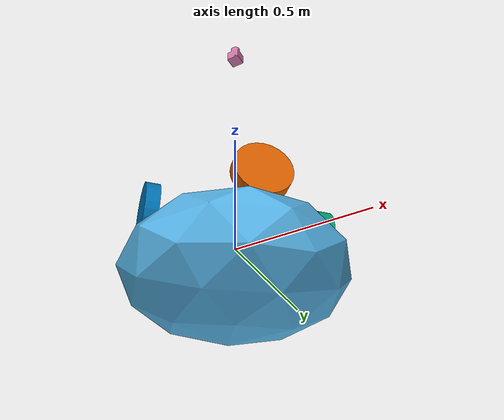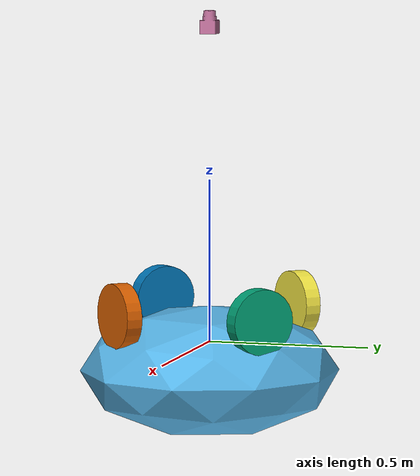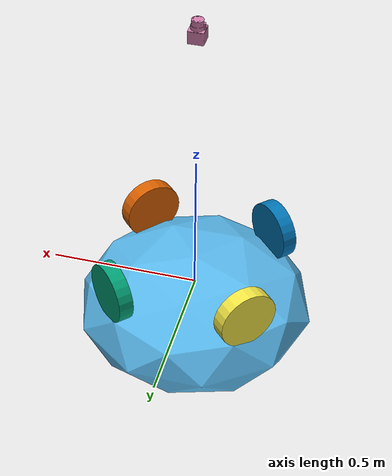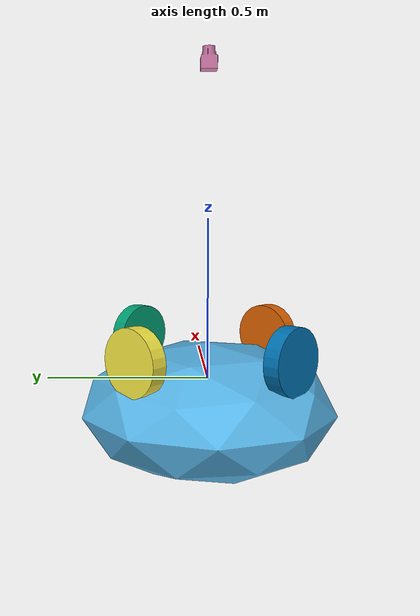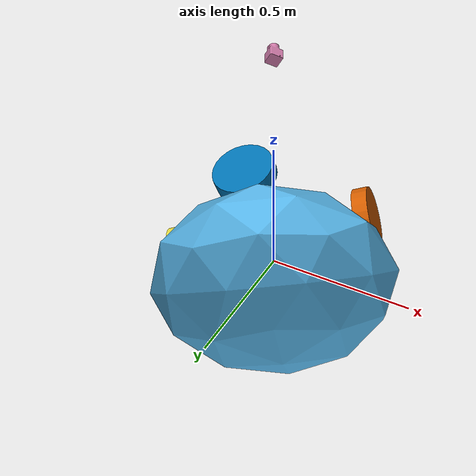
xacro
<?xml version="1.0"?>
<robot name="pudu" xmlns:xacro="http://ros.org/wiki/xacro">
    <xacro:arg name="robot_name" default="pudu"/>
    <xacro:arg name="robot_namespace" default="$(arg robot_name)"/>

    <xacro:include filename="$(find pudu_description)/urdf/components/base/base.urdf.xacro" />
    <xacro:include filename="$(find pudu_description)/urdf/components/wheels/wheel.urdf.xacro" />
    <xacro:include filename="$(find pudu_description)/urdf/components/plugins/control.urdf.xacro" />
    <xacro:include filename="$(find pudu_description)/urdf/components/plugins/transmission.urdf.xacro" />
    <xacro:include filename="$(find pudu_description)/urdf/components/plugins/gz_control.urdf.xacro" />
    <xacro:include filename="$(find pudu_description)/urdf/components/sensors/lidar.urdf.xacro" />

    <xacro:base />

    <xacro:property name="wheel_x" value="${base_length/2 - 0.08}"/>
    <xacro:property name="wheel_y" value="${base_width/2 - 0.08}"/>
    <xacro:property name="wheel_z" value="${-base_height/2 - clearance + wheel_radius}"/>

    <xacro:wheel prefix="front_left" parent="base_link">
        <origin xyz="${wheel_x} ${wheel_y} ${wheel_z}" rpy="0 0 -0.785398"/>
    </xacro:wheel>

    <xacro:wheel prefix="rear_left" parent="base_link">
        <origin xyz="-${wheel_x} ${wheel_y} ${wheel_z}" rpy="0 0 0.785398"/>
    </xacro:wheel>

    <xacro:wheel prefix="rear_right" parent="base_link">
        <origin xyz="-${wheel_x} -${wheel_y} ${wheel_z}" rpy="0 0 2.35617"/>
    </xacro:wheel>

    <xacro:wheel prefix="front_right" parent="base_link">
        <origin xyz="${wheel_x} -${wheel_y} ${wheel_z}" rpy="0 0 -2.35617"/>
    </xacro:wheel>

     <xacro:control>
        <transmissions>
            <xacro:transmission joint="front_left_wheel_joint"/>
            <xacro:transmission joint="front_right_wheel_joint"/>
            <xacro:transmission joint="rear_left_wheel_joint"/>
            <xacro:transmission joint="rear_right_wheel_joint"/>
        </transmissions>
    </xacro:control>

    <xacro:gz_control namespace="$(arg robot_namespace)"/>

    <xacro:lidar prefix="lidar" parent="base_link" ns="$(arg robot_namespace)">
        <origin xyz="0.0 0.0 0.5" rpy="0.0 0.0 0.0"/>
    </xacro:lidar>
</robot>

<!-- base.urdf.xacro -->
<robot xmlns:xacro="http://ros.org/wiki/xacro">

    <xacro:property name="base_length" value="0.6"/>
    <xacro:property name="base_width" value="0.6"/>
    <xacro:property name="base_height" value="0.9"/>
    <xacro:property name="clearance" value="0.05"/>
    <xacro:property name="mass" value="60.0"/>

    <xacro:property name="ixx" value="${mass * (base_width**2 + base_height**2) / 12}"/>
    <xacro:property name="iyy" value="${mass * (base_length**2 + base_height**2) / 12}"/>
    <xacro:property name="izz" value="${mass * (base_length**2 + base_width**2) / 12}"/>

    <xacro:macro name="base">
        <link name="base_footprint"/>

        <link name="base_link">
            <visual>
                <origin xyz="0 0 -0.59" rpy="0.0 0.0 ${pi/2}" />
                <geometry>
                    <mesh filename="file://$(find pudu_description)/meshes/base/base.dae" scale="0.4 0.4 0.2"/>
                </geometry>
            </visual>
            <collision>
                <origin xyz="0 0 0" rpy="0.0 0.0 0.0" />
                <geometry>
                    <box size="${base_length} ${base_width} ${base_height}"/>
                </geometry>
            </collision>
            <inertial>
                <origin xyz="0.0 0.0 0.0" rpy="0.0 0.0 0.0"/>
                <mass value="${mass}"/>
                <inertia ixx="${ixx}" ixy="0.0" ixz="0.0"
                         iyy="${iyy}" iyz="0.0"
                         izz="${izz}"/>
            </inertial>
        </link>

        <joint name="base_link_joint" type="fixed">
            <origin xyz="0.0 0.0 ${base_height/2 + clearance}" rpy="0.0 0.0 0.0"/>
            <parent link="base_footprint"/>
            <child link="base_link"/>
        </joint>
    </xacro:macro>
</robot>

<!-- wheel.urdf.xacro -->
<robot xmlns:xacro="http://ros.org/wiki/xacro">

    <xacro:property name="wheel_radius" value="0.1"/>
    <xacro:property name="wheel_length" value="0.05"/>
    <xacro:property name="wheel_mass" value="1.0"/>

    <xacro:macro name="wheel" params="prefix parent *origin">

        <joint name="${prefix}_wheel_joint" type="continuous">
            <parent link="${parent}"/>
            <child link="${prefix}_wheel_link"/>
            <axis xyz="0 1 0"/>
            <dynamics damping="0.2"/>

            <xacro:insert_block name="origin"/>
        </joint>

        <link name="${prefix}_wheel_link">
            <visual>
                <origin xyz="0 0 0" rpy="${pi/2} 0 0"/>
                <geometry>
                    <cylinder radius="${wheel_radius}" length="${wheel_length}"/>
                </geometry>
            </visual>
            <collision>
                <origin xyz="0 0 0" rpy="${pi/2} 0 0"/>
                <geometry>
                    <cylinder radius="${wheel_radius}" length="${wheel_length}"/>
                </geometry>
            </collision>

            <inertial>
                <origin xyz="0 0 0" rpy="0 0 0"/>
                <mass value="${wheel_mass}"/>
                <inertia ixx="${(3*wheel_radius**2+wheel_length**2)*wheel_mass*1/12}" ixy="0.0" ixz="0.0"
                        iyy="${(3*wheel_radius**2+wheel_length**2)*wheel_mass*1/12}" iyz="0.0"
                        izz="${(wheel_mass*wheel_radius**2)*1/2}"/>
            </inertial>
        </link>

    </xacro:macro>
</robot>

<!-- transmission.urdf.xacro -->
<robot xmlns:xacro="http://ros.org/wiki/xacro">

    <xacro:macro name="transmission" params="joint">

        <joint name="${joint}">
            <command_interface name="velocity">
                <param name="min">-1</param>
                <param name="max">1</param>
            </command_interface>
            <command_interface name="position">
                <param name="min">-10</param>
                <param name="max">10</param>
            </command_interface>
            <state_interface name="position">
                <param name="initial_value">0.0</param>
            </state_interface>
            <state_interface name="velocity"/>
        </joint>
    </xacro:macro>
</robot>

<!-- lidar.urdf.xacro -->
<robot xmlns:xacro="http://ros.org/wiki/xacro">

  <xacro:include filename="$(find pudu_description)/urdf/components/plugins/gz_lidar.urdf.xacro"/>

  <xacro:macro name="lidar" params="prefix parent ns *origin">

    <joint name="${prefix}_joint" type="fixed">
        <parent link="${parent}"/>
        <child link="${prefix}_link"/>
        <xacro:insert_block name="origin"/>
    </joint>

    <link name="${prefix}_link">
      <visual>
        <origin xyz="0 0 0" rpy="0 0 0"/>
        <geometry>
            <mesh filename="file://$(find pudu_description)/meshes/sensors/hokuyo_urg_04lx_ug01.stl"/>
        </geometry>
      </visual>
      <collision>
			  <origin xyz="0 0 0" rpy="0 0 0"/>
			  <geometry>
				  <mesh filename="file://$(find pudu_description)/meshes/sensors/hokuyo_urg_04lx_ug01.stl"/>
			  </geometry>
	  </collision>
      <inertial>
        <origin xyz="0 0 0" rpy="0 0 0"/>
        <mass value="0.1"/>
        <inertia ixx="1.0" ixy="0.0" ixz="0.0"
                 iyy="1.0" iyz="0.0"
                 izz="1.0"/>
      </inertial>
    </link>

    <xacro:gz_lidar prefix="${prefix}" namespace="${ns}"/>

  </xacro:macro>

</robot>
